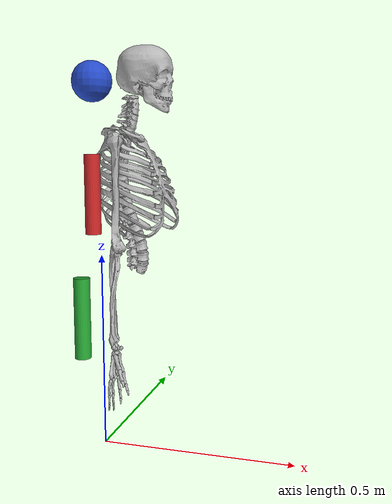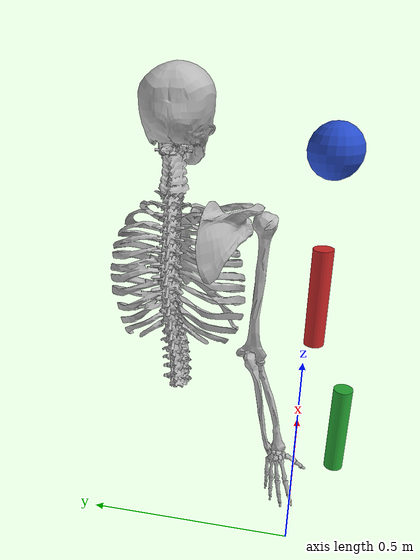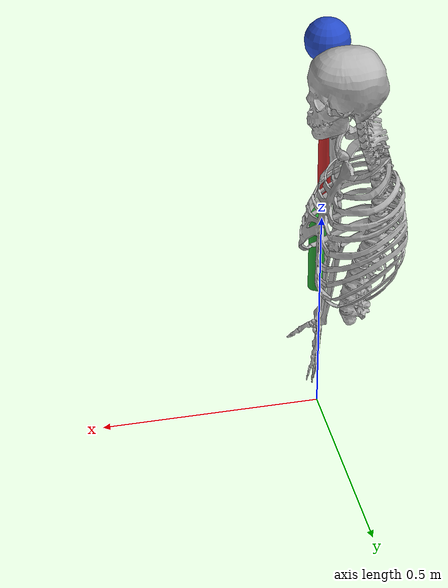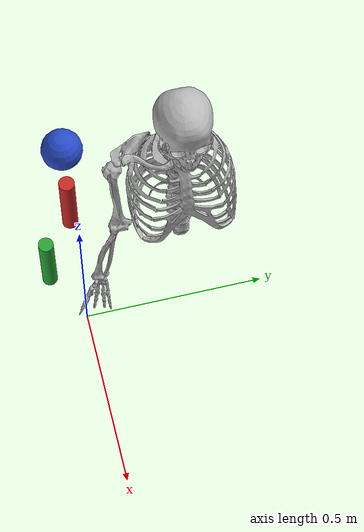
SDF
<?xml version='1.0'?>
<sdf version='1.6'>
  <model name='ExoSuitPoC'>
    <link name='link_0'>
      <pose frame=''>-0.008457 -0.020197 0.93249 0 -0 0</pose>
      <inertial>
        <mass>1</mass>
        <inertia>
          <ixx>0.1</ixx>
          <ixy>0</ixy>
          <ixz>0</ixz>
          <iyy>0.1</iyy>
          <iyz>0</iyz>
          <izz>0.1</izz>
        </inertia>
        <pose frame=''>0 0 0 0 -0 0</pose>
      </inertial>
      <self_collide>0</self_collide>
      <kinematic>0</kinematic>
      <gravity>1</gravity>
      <visual name='visual'>
        <pose frame=''>0 0 0 0 -0 0</pose>
        <geometry>
          <sphere>
            <radius>0.05</radius>
          </sphere>
        </geometry>
        <material>
          <lighting>1</lighting>
          <script>
            <uri>file://media/materials/scripts/gazebo.material</uri>
            <name>Gazebo/Blue</name>
          </script>
          <ambient>0.3 0.3 0.8 1</ambient>
          <diffuse>0.7 0.7 0.9 1</diffuse>
          <specular>0.01 0.01 0.05 1</specular>
          <emissive>0 0 0 1</emissive>
          <shader type='vertex'>
            <normal_map>__default__</normal_map>
          </shader>
        </material>
        <cast_shadows>1</cast_shadows>
        <transparency>0</transparency>
      </visual>
      <collision name='collision'>
        <laser_retro>0</laser_retro>
        <max_contacts>10</max_contacts>
        <pose frame=''>0 0 0 0 -0 0</pose>
        <geometry>
          <sphere>
            <radius>0.05</radius>
          </sphere>
        </geometry>
        <surface>
          <friction>
            <ode>
              <mu>1</mu>
              <mu2>1</mu2>
              <fdir1>0 0 0</fdir1>
              <slip1>0</slip1>
              <slip2>0</slip2>
            </ode>
            <torsional>
              <coefficient>1</coefficient>
              <patch_radius>0</patch_radius>
              <surface_radius>0</surface_radius>
              <use_patch_radius>1</use_patch_radius>
              <ode>
                <slip>0</slip>
              </ode>
            </torsional>
          </friction>
          <bounce>
            <restitution_coefficient>0</restitution_coefficient>
            <threshold>1e+06</threshold>
          </bounce>
          <contact>
            <collide_without_contact>0</collide_without_contact>
            <collide_without_contact_bitmask>1</collide_without_contact_bitmask>
            <collide_bitmask>1</collide_bitmask>
            <ode>
              <soft_cfm>0</soft_cfm>
              <soft_erp>0.2</soft_erp>
              <kp>1e+13</kp>
              <kd>1</kd>
              <max_vel>0.01</max_vel>
              <min_depth>0</min_depth>
            </ode>
            <bullet>
              <split_impulse>1</split_impulse>
              <split_impulse_penetration_threshold>-0.01</split_impulse_penetration_threshold>
              <soft_cfm>0</soft_cfm>
              <soft_erp>0.2</soft_erp>
              <kp>1e+13</kp>
              <kd>1</kd>
            </bullet>
          </contact>
        </surface>
      </collision>
    </link>
    <link name='link_1'>
      <pose frame=''>-0.013731 -0.017229 0.656462 0 -0 0</pose>
      <inertial>
        <mass>1</mass>
        <inertia>
          <ixx>0.145833</ixx>
          <ixy>0</ixy>
          <ixz>0</ixz>
          <iyy>0.145833</iyy>
          <iyz>0</iyz>
          <izz>0.125</izz>
        </inertia>
        <pose frame=''>0 0 0 0 -0 0</pose>
      </inertial>
      <self_collide>0</self_collide>
      <kinematic>0</kinematic>
      <gravity>1</gravity>
      <visual name='visual'>
        <pose frame=''>0 0 0 0 -0 0</pose>
        <geometry>
          <cylinder>
            <radius>0.02</radius>
            <length>0.2</length>
          </cylinder>
        </geometry>
        <material>
          <lighting>1</lighting>
          <script>
            <uri>file://media/materials/scripts/gazebo.material</uri>
            <name>Gazebo/Red</name>
          </script>
          <ambient>0.8 0.3 0.3 1</ambient>
          <diffuse>0.9 0.7 0.7 1</diffuse>
          <specular>0.05 0.01 0.01 1</specular>
          <emissive>0 0 0 1</emissive>
          <shader type='vertex'>
            <normal_map>__default__</normal_map>
          </shader>
        </material>
        <cast_shadows>1</cast_shadows>
        <transparency>0</transparency>
      </visual>
      <collision name='collision'>
        <laser_retro>0</laser_retro>
        <max_contacts>10</max_contacts>
        <pose frame=''>0 0 0 0 -0 0</pose>
        <geometry>
          <cylinder>
            <radius>0.02</radius>
            <length>0.2</length>
          </cylinder>
        </geometry>
        <surface>
          <friction>
            <ode>
              <mu>1</mu>
              <mu2>1</mu2>
              <fdir1>0 0 0</fdir1>
              <slip1>0</slip1>
              <slip2>0</slip2>
            </ode>
            <torsional>
              <coefficient>1</coefficient>
              <patch_radius>0</patch_radius>
              <surface_radius>0</surface_radius>
              <use_patch_radius>1</use_patch_radius>
              <ode>
                <slip>0</slip>
              </ode>
            </torsional>
          </friction>
          <bounce>
            <restitution_coefficient>0</restitution_coefficient>
            <threshold>1e+06</threshold>
          </bounce>
          <contact>
            <collide_without_contact>0</collide_without_contact>
            <collide_without_contact_bitmask>1</collide_without_contact_bitmask>
            <collide_bitmask>1</collide_bitmask>
            <ode>
              <soft_cfm>0</soft_cfm>
              <soft_erp>0.2</soft_erp>
              <kp>1e+13</kp>
              <kd>1</kd>
              <max_vel>0.01</max_vel>
              <min_depth>0</min_depth>
            </ode>
            <bullet>
              <split_impulse>1</split_impulse>
              <split_impulse_penetration_threshold>-0.01</split_impulse_penetration_threshold>
              <soft_cfm>0</soft_cfm>
              <soft_erp>0.2</soft_erp>
              <kp>1e+13</kp>
              <kd>1</kd>
            </bullet>
          </contact>
        </surface>
      </collision>
    </link>
    <link name='link_1_clone'>
      <pose frame=''>-0.014757 -0.087398 0.357268 0 -0 0</pose>
      <inertial>
        <mass>1</mass>
        <inertia>
          <ixx>0.145833</ixx>
          <ixy>0</ixy>
          <ixz>0</ixz>
          <iyy>0.145833</iyy>
          <iyz>0</iyz>
          <izz>0.125</izz>
        </inertia>
        <pose frame=''>0 0 0 0 -0 0</pose>
      </inertial>
      <self_collide>0</self_collide>
      <kinematic>0</kinematic>
      <gravity>1</gravity>
      <visual name='visual'>
        <pose frame=''>0 0 0 0 -0 0</pose>
        <geometry>
          <cylinder>
            <radius>0.02</radius>
            <length>0.2</length>
          </cylinder>
        </geometry>
        <material>
          <lighting>1</lighting>
          <script>
            <uri>file://media/materials/scripts/gazebo.material</uri>
            <name>Gazebo/Green</name>
          </script>
          <ambient>0.3 0.8 0.3 1</ambient>
          <diffuse>0.7 0.9 0.7 1</diffuse>
          <specular>0.01 0.05 0.01 1</specular>
          <emissive>0 0 0 1</emissive>
          <shader type='vertex'>
            <normal_map>__default__</normal_map>
          </shader>
        </material>
        <cast_shadows>1</cast_shadows>
        <transparency>0</transparency>
      </visual>
      <collision name='collision'>
        <laser_retro>0</laser_retro>
        <max_contacts>10</max_contacts>
        <pose frame=''>0 0 0 0 -0 0</pose>
        <geometry>
          <cylinder>
            <radius>0.02</radius>
            <length>0.2</length>
          </cylinder>
        </geometry>
        <surface>
          <friction>
            <ode>
              <mu>1</mu>
              <mu2>1</mu2>
              <fdir1>0 0 0</fdir1>
              <slip1>0</slip1>
              <slip2>0</slip2>
            </ode>
            <torsional>
              <coefficient>1</coefficient>
              <patch_radius>0</patch_radius>
              <surface_radius>0</surface_radius>
              <use_patch_radius>1</use_patch_radius>
              <ode>
                <slip>0</slip>
              </ode>
            </torsional>
          </friction>
          <bounce>
            <restitution_coefficient>0</restitution_coefficient>
            <threshold>1e+06</threshold>
          </bounce>
          <contact>
            <collide_without_contact>0</collide_without_contact>
            <collide_without_contact_bitmask>1</collide_without_contact_bitmask>
            <collide_bitmask>1</collide_bitmask>
            <ode>
              <soft_cfm>0</soft_cfm>
              <soft_erp>0.2</soft_erp>
              <kp>1e+13</kp>
              <kd>1</kd>
              <max_vel>0.01</max_vel>
              <min_depth>0</min_depth>
            </ode>
            <bullet>
              <split_impulse>1</split_impulse>
              <split_impulse_penetration_threshold>-0.01</split_impulse_penetration_threshold>
              <soft_cfm>0</soft_cfm>
              <soft_erp>0.2</soft_erp>
              <kp>1e+13</kp>
              <kd>1</kd>
            </bullet>
          </contact>
        </surface>
      </collision>
    </link>
    <model name='arm26'>
      <muscles>model://arm26/muscles.osim</muscles>
      <link name='base'>
        <pose frame=''>0 0 0.8 1.5708 -0 0</pose>
        <inertial>
          <mass>0.0001</mass>
          <pose frame=''>0 0 0 0 -0 0</pose>
          <inertia>
            <ixx>0</ixx>
            <ixy>0</ixy>
            <ixz>0</ixz>
            <iyy>0</iyy>
            <iyz>0</iyz>
            <izz>0</izz>
          </inertia>
        </inertial>
        <visual name='ground_ribs'>
          <pose frame=''>-0 0 -0 0 -0 0</pose>
          <geometry>
            <mesh>
              <uri>model://arm26/meshes/visuals/ground_ribs.dae</uri>
              <scale>1 1 1</scale>
            </mesh>
          </geometry>
        </visual>
        <visual name='ground_spine'>
          <pose frame=''>-0 0 -0 0 -0 0</pose>
          <geometry>
            <mesh>
              <uri>model://arm26/meshes/visuals/ground_spine.dae</uri>
              <scale>1 1 1</scale>
            </mesh>
          </geometry>
        </visual>
        <visual name='ground_skull'>
          <pose frame=''>-0 0 -0 0 -0 0</pose>
          <geometry>
            <mesh>
              <uri>model://arm26/meshes/visuals/ground_skull.dae</uri>
              <scale>1 1 1</scale>
            </mesh>
          </geometry>
        </visual>
        <visual name='ground_jaw'>
          <pose frame=''>-0 0 -0 0 -0 0</pose>
          <geometry>
            <mesh>
              <uri>model://arm26/meshes/visuals/ground_jaw.dae</uri>
              <scale>1 1 1</scale>
            </mesh>
          </geometry>
        </visual>
        <visual name='ground_r_clavicle'>
          <pose frame=''>-0 0 -0 0 -0 0</pose>
          <geometry>
            <mesh>
              <uri>model://arm26/meshes/visuals/ground_r_clavicle.dae</uri>
              <scale>1 1 1</scale>
            </mesh>
          </geometry>
        </visual>
        <visual name='ground_r_scapula'>
          <pose frame=''>-0 0 -0 0 -0 0</pose>
          <geometry>
            <mesh>
              <uri>model://arm26/meshes/visuals/ground_r_scapula.dae</uri>
              <scale>1 1 1</scale>
            </mesh>
          </geometry>
        </visual>
        <self_collide>0</self_collide>
      </link>
      <link name='r_humerus'>
        <pose frame=''>-0.017545 -0.17 0.793 1.5708 -0 0</pose>
        <inertial>
          <mass>1.86457</mass>
          <pose frame=''>0 0 0 0 -0 0</pose>
          <inertia>
            <ixx>0.01481</ixx>
            <ixy>0</ixy>
            <ixz>0</ixz>
            <iyy>0.004551</iyy>
            <iyz>0</iyz>
            <izz>0.013193</izz>
          </inertia>
        </inertial>
        <visual name='arm_r_humerus'>
          <pose frame=''>-0 0 -0 0 -0 0</pose>
          <geometry>
            <mesh>
              <uri>model://arm26/meshes/visuals/arm_r_humerus.dae</uri>
              <scale>1 1 1</scale>
            </mesh>
          </geometry>
        </visual>
        <self_collide>0</self_collide>
      </link>
      <link name='r_ulna_radius_hand'>
        <pose frame=''>-0.011445 -0.1577 0.5026 1.5708 -0 0</pose>
        <inertial>
          <mass>1.53432</mass>
          <pose frame=''>0 0 0 0 -0 0</pose>
          <inertia>
            <ixx>0.019281</ixx>
            <ixy>0</ixy>
            <ixz>0</ixz>
            <iyy>0.001571</iyy>
            <iyz>0</iyz>
            <izz>0.020062</izz>
          </inertia>
        </inertial>
        <visual name='arm_r_ulna'>
          <pose frame=''>-0 0 -0 0 -0 0</pose>
          <geometry>
            <mesh>
              <uri>model://arm26/meshes/visuals/arm_r_ulna.dae</uri>
              <scale>1 1 1</scale>
            </mesh>
          </geometry>
        </visual>
        <visual name='arm_r_radius'>
          <pose frame=''>-0 0 -0 0 -0 0</pose>
          <geometry>
            <mesh>
              <uri>model://arm26/meshes/visuals/arm_r_radius.dae</uri>
              <scale>1 1 1</scale>
            </mesh>
          </geometry>
        </visual>
        <visual name='arm_r_lunate'>
          <pose frame=''>-0 0 -0 0 -0 0</pose>
          <geometry>
            <mesh>
              <uri>model://arm26/meshes/visuals/arm_r_lunate.dae</uri>
              <scale>1 1 1</scale>
            </mesh>
          </geometry>
        </visual>
        <visual name='arm_r_scaphoid'>
          <pose frame=''>-0 0 -0 0 -0 0</pose>
          <geometry>
            <mesh>
              <uri>model://arm26/meshes/visuals/arm_r_scaphoid.dae</uri>
              <scale>1 1 1</scale>
            </mesh>
          </geometry>
        </visual>
        <visual name='arm_r_pisiform'>
          <pose frame=''>-0 0 -0 0 -0 0</pose>
          <geometry>
            <mesh>
              <uri>model://arm26/meshes/visuals/arm_r_pisiform.dae</uri>
              <scale>1 1 1</scale>
            </mesh>
          </geometry>
        </visual>
        <visual name='arm_r_triquetrum'>
          <pose frame=''>-0 0 -0 0 -0 0</pose>
          <geometry>
            <mesh>
              <uri>model://arm26/meshes/visuals/arm_r_triquetrum.dae</uri>
              <scale>1 1 1</scale>
            </mesh>
          </geometry>
        </visual>
        <visual name='arm_r_capitate'>
          <pose frame=''>-0 0 -0 0 -0 0</pose>
          <geometry>
            <mesh>
              <uri>model://arm26/meshes/visuals/arm_r_capitate.dae</uri>
              <scale>1 1 1</scale>
            </mesh>
          </geometry>
        </visual>
        <visual name='arm_r_trapezium'>
          <pose frame=''>-0 0 -0 0 -0 0</pose>
          <geometry>
            <mesh>
              <uri>model://arm26/meshes/visuals/arm_r_trapezium.dae</uri>
              <scale>1 1 1</scale>
            </mesh>
          </geometry>
        </visual>
        <visual name='arm_r_trapezoid'>
          <pose frame=''>-0 0 -0 0 -0 0</pose>
          <geometry>
            <mesh>
              <uri>model://arm26/meshes/visuals/arm_r_trapezoid.dae</uri>
              <scale>1 1 1</scale>
            </mesh>
          </geometry>
        </visual>
        <visual name='arm_r_hamate'>
          <pose frame=''>-0 0 -0 0 -0 0</pose>
          <geometry>
            <mesh>
              <uri>model://arm26/meshes/visuals/arm_r_hamate.dae</uri>
              <scale>1 1 1</scale>
            </mesh>
          </geometry>
        </visual>
        <visual name='arm_r_1mc'>
          <pose frame=''>-0 0 -0 0 -0 0</pose>
          <geometry>
            <mesh>
              <uri>model://arm26/meshes/visuals/arm_r_1mc.dae</uri>
              <scale>1 1 1</scale>
            </mesh>
          </geometry>
        </visual>
        <visual name='arm_r_2mc'>
          <pose frame=''>-0 0 -0 0 -0 0</pose>
          <geometry>
            <mesh>
              <uri>model://arm26/meshes/visuals/arm_r_2mc.dae</uri>
              <scale>1 1 1</scale>
            </mesh>
          </geometry>
        </visual>
        <visual name='arm_r_3mc'>
          <pose frame=''>-0 0 -0 0 -0 0</pose>
          <geometry>
            <mesh>
              <uri>model://arm26/meshes/visuals/arm_r_3mc.dae</uri>
              <scale>1 1 1</scale>
            </mesh>
          </geometry>
        </visual>
        <visual name='arm_r_4mc'>
          <pose frame=''>-0 0 -0 0 -0 0</pose>
          <geometry>
            <mesh>
              <uri>model://arm26/meshes/visuals/arm_r_4mc.dae</uri>
              <scale>1 1 1</scale>
            </mesh>
          </geometry>
        </visual>
        <visual name='arm_r_5mc'>
          <pose frame=''>-0 0 -0 0 -0 0</pose>
          <geometry>
            <mesh>
              <uri>model://arm26/meshes/visuals/arm_r_5mc.dae</uri>
              <scale>1 1 1</scale>
            </mesh>
          </geometry>
        </visual>
        <visual name='arm_r_thumbprox'>
          <pose frame=''>-0 0 -0 0 -0 0</pose>
          <geometry>
            <mesh>
              <uri>model://arm26/meshes/visuals/arm_r_thumbprox.dae</uri>
              <scale>1 1 1</scale>
            </mesh>
          </geometry>
        </visual>
        <visual name='arm_r_thumbdist'>
          <pose frame=''>-0 0 -0 0 -0 0</pose>
          <geometry>
            <mesh>
              <uri>model://arm26/meshes/visuals/arm_r_thumbdist.dae</uri>
              <scale>1 1 1</scale>
            </mesh>
          </geometry>
        </visual>
        <visual name='arm_r_2proxph'>
          <pose frame=''>-0 0 -0 0 -0 0</pose>
          <geometry>
            <mesh>
              <uri>model://arm26/meshes/visuals/arm_r_2proxph.dae</uri>
              <scale>1 1 1</scale>
            </mesh>
          </geometry>
        </visual>
        <visual name='arm_r_2midph'>
          <pose frame=''>-0 0 -0 0 -0 0</pose>
          <geometry>
            <mesh>
              <uri>model://arm26/meshes/visuals/arm_r_2midph.dae</uri>
              <scale>1 1 1</scale>
            </mesh>
          </geometry>
        </visual>
        <visual name='arm_r_2distph'>
          <pose frame=''>-0 0 -0 0 -0 0</pose>
          <geometry>
            <mesh>
              <uri>model://arm26/meshes/visuals/arm_r_2distph.dae</uri>
              <scale>1 1 1</scale>
            </mesh>
          </geometry>
        </visual>
        <visual name='arm_r_3proxph'>
          <pose frame=''>-0 0 -0 0 -0 0</pose>
          <geometry>
            <mesh>
              <uri>model://arm26/meshes/visuals/arm_r_3proxph.dae</uri>
              <scale>1 1 1</scale>
            </mesh>
          </geometry>
        </visual>
        <visual name='arm_r_3midph'>
          <pose frame=''>-0 0 -0 0 -0 0</pose>
          <geometry>
            <mesh>
              <uri>model://arm26/meshes/visuals/arm_r_3midph.dae</uri>
              <scale>1 1 1</scale>
            </mesh>
          </geometry>
        </visual>
        <visual name='arm_r_3distph'>
          <pose frame=''>-0 0 -0 0 -0 0</pose>
          <geometry>
            <mesh>
              <uri>model://arm26/meshes/visuals/arm_r_3distph.dae</uri>
              <scale>1 1 1</scale>
            </mesh>
          </geometry>
        </visual>
        <visual name='arm_r_4proxph'>
          <pose frame=''>-0 0 -0 0 -0 0</pose>
          <geometry>
            <mesh>
              <uri>model://arm26/meshes/visuals/arm_r_4proxph.dae</uri>
              <scale>1 1 1</scale>
            </mesh>
          </geometry>
        </visual>
        <visual name='arm_r_4midph'>
          <pose frame=''>-0 0 -0 0 -0 0</pose>
          <geometry>
            <mesh>
              <uri>model://arm26/meshes/visuals/arm_r_4midph.dae</uri>
              <scale>1 1 1</scale>
            </mesh>
          </geometry>
        </visual>
        <visual name='arm_r_4distph'>
          <pose frame=''>-0 0 -0 0 -0 0</pose>
          <geometry>
            <mesh>
              <uri>model://arm26/meshes/visuals/arm_r_4distph.dae</uri>
              <scale>1 1 1</scale>
            </mesh>
          </geometry>
        </visual>
        <visual name='arm_r_5proxph'>
          <pose frame=''>-0 0 -0 0 -0 0</pose>
          <geometry>
            <mesh>
              <uri>model://arm26/meshes/visuals/arm_r_5proxph.dae</uri>
              <scale>1 1 1</scale>
            </mesh>
          </geometry>
        </visual>
        <visual name='arm_r_5midph'>
          <pose frame=''>-0 0 -0 0 -0 0</pose>
          <geometry>
            <mesh>
              <uri>model://arm26/meshes/visuals/arm_r_5midph.dae</uri>
              <scale>1 1 1</scale>
            </mesh>
          </geometry>
        </visual>
        <visual name='arm_r_5distph'>
          <pose frame=''>-0 0 -0 0 -0 0</pose>
          <geometry>
            <mesh>
              <uri>model://arm26/meshes/visuals/arm_r_5distph.dae</uri>
              <scale>1 1 1</scale>
            </mesh>
          </geometry>
        </visual>
        <self_collide>0</self_collide>
      </link>
      <joint name='offset' type='fixed'>
        <parent>world</parent>
        <child>base</child>
      </joint>
      <joint name='r_shoulder' type='revolute'>
        <parent>base</parent>
        <child>r_humerus</child>
        <axis>
          <xyz>0 0 1</xyz>
          <dynamics>
            <damping>1e-06</damping>
            <spring_reference>0</spring_reference>
            <spring_stiffness>0</spring_stiffness>
          </dynamics>
          <limit>
            <lower>-1.5708</lower>
            <upper>3.14159</upper>
            <stiffness>100</stiffness>
            <dissipation>0.01</dissipation>
          </limit>
          <use_parent_model_frame>0</use_parent_model_frame>
        </axis>
      </joint>
      <joint name='r_elbow' type='revolute'>
        <parent>r_humerus</parent>
        <child>r_ulna_radius_hand</child>
        <axis>
          <xyz>0 0 1</xyz>
          <dynamics>
            <damping>1e-06</damping>
            <spring_reference>0</spring_reference>
            <spring_stiffness>0</spring_stiffness>
          </dynamics>
          <limit>
            <lower>0</lower>
            <upper>2.26893</upper>
            <stiffness>100</stiffness>
            <dissipation>0.01</dissipation>
          </limit>
          <use_parent_model_frame>0</use_parent_model_frame>
        </axis>
      </joint>
      <plugin name='muscle_interface_plugin' filename='libgazebo_ros_muscle_interface.so'/>
      <pose frame=''>0.015549 0.266768 -0.000116 0 -0 0</pose>
    </model>
    <joint name='base_JOINT_0' type='fixed'>
      <parent>arm26::base</parent>
      <child>link_0</child>
      <pose frame=''>0 0 0 0.04 -0 0</pose>
      <physics>
        <ode>
          <limit>
            <cfm>0</cfm>
            <erp>0.2</erp>
          </limit>
          <suspension>
            <cfm>0</cfm>
            <erp>0.2</erp>
          </suspension>
        </ode>
      </physics>
    </joint>
    <joint name='r_humerus_JOINT_1' type='fixed'>
      <parent>arm26::r_humerus</parent>
      <child>link_1</child>
      <pose frame=''>0 0 0 0 -0 0</pose>
      <physics>
        <ode>
          <limit>
            <cfm>0</cfm>
            <erp>0.2</erp>
          </limit>
          <suspension>
            <cfm>0</cfm>
            <erp>0.2</erp>
          </suspension>
        </ode>
      </physics>
    </joint>
    <joint name='r_ulna_radius_hand_JOINT_2' type='fixed'>
      <parent>arm26::r_ulna_radius_hand</parent>
      <child>link_1_clone</child>
      <pose frame=''>0 0 0 0 -0 0</pose>
      <physics>
        <ode>
          <limit>
            <cfm>0</cfm>
            <erp>0.2</erp>
          </limit>
          <suspension>
            <cfm>0</cfm>
            <erp>0.2</erp>
          </suspension>
        </ode>
      </physics>
    </joint>
    <static>0</static>
    <allow_auto_disable>1</allow_auto_disable>
  </model>
</sdf>
